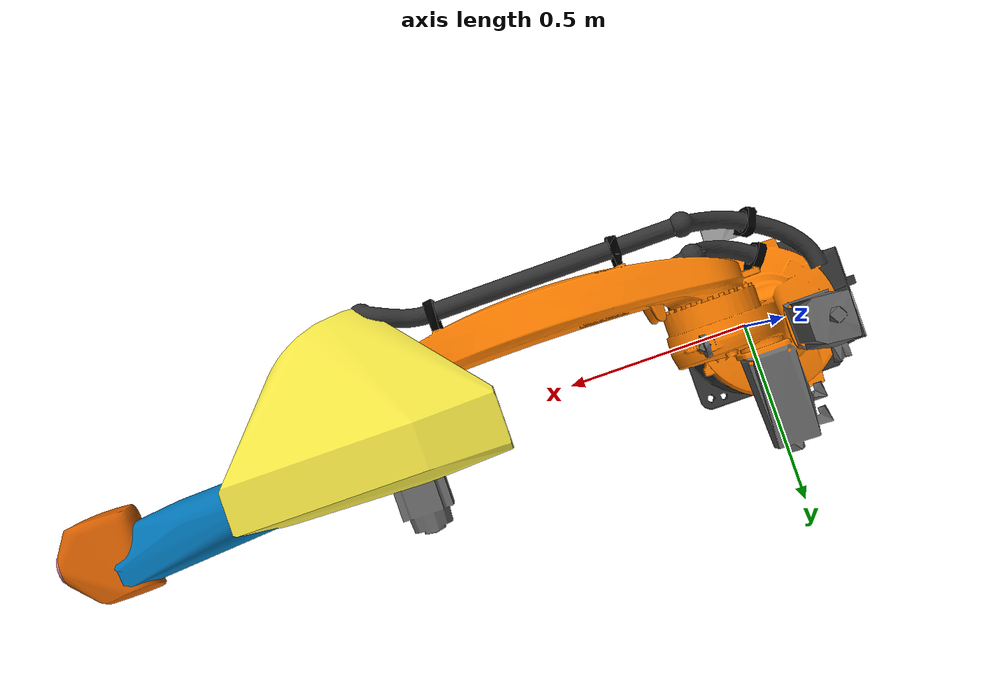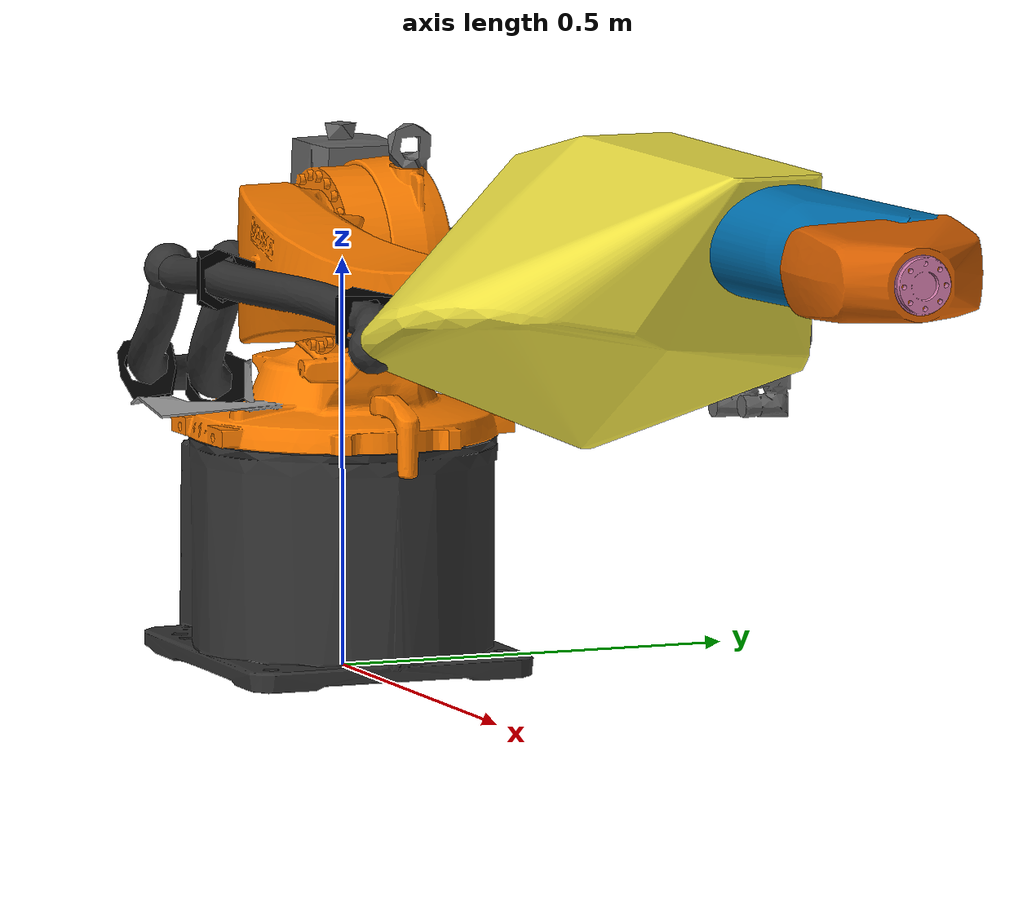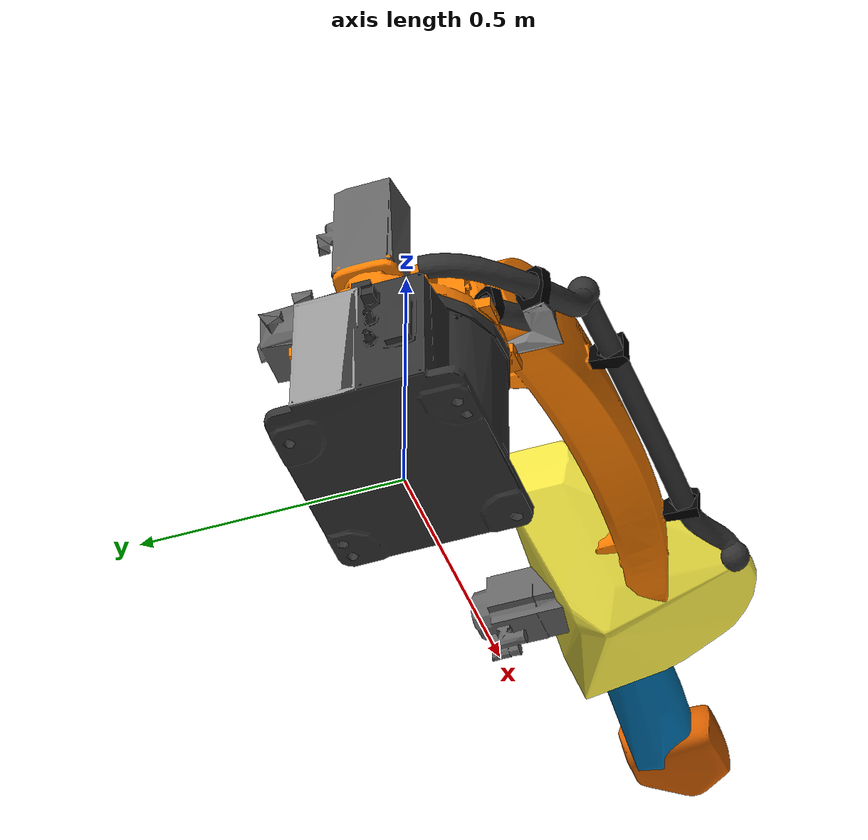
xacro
<?xml version="1.0"?>
<!--Generates a urdf from the macro in kr16_r1610_macro.xacro -->
<robot name="kuka_kr16r1610cybertech" xmlns:xacro="http://wiki.ros.org/xacro">
  <xacro:include filename="$(find kuka_kr16_support)/urdf/kr16r1610cybertech_macro.xacro" />
  <xacro:kuka_kr16r1610cybertech prefix=""/>
</robot>

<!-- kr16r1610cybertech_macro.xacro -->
<robot xmlns:xacro="http://wiki.ros.org/xacro">

  <xacro:macro name="kuka_kr16r1610cybertech" params="prefix">
    <link name="${prefix}base_link">
      <visual>
        <origin xyz="0 0 0" rpy="0 0 0"/>
        <geometry>
          <mesh filename="package://kuka_kr16_support/meshes/kr16r1610cybertech/visual/base_link.dae" />
        </geometry>
      </visual>
      <collision>
        <origin xyz="0 0 0" rpy="0 0 0"/>
        <geometry>
          <mesh filename="package://kuka_kr16_support/meshes/kr16r1610cybertech/collision/base_link.stl" />
        </geometry>
      </collision>
    </link>
    <link name="${prefix}link_1">
      <visual>
        <origin xyz="0 0 0" rpy="0 0 0"/>
        <geometry>
          <mesh filename="package://kuka_kr16_support/meshes/kr16r1610cybertech/visual/link_1.dae" />
        </geometry>
      </visual>
      <collision>
        <origin xyz="0 0 0" rpy="0 0 0"/>
        <geometry>
          <mesh filename="package://kuka_kr16_support/meshes/kr16r1610cybertech/collision/link_1.stl" />
        </geometry>
      </collision>
    </link>
    <link name="${prefix}link_2">
      <visual>
        <origin xyz="0 0 0" rpy="0 0 0"/>
        <geometry>
          <mesh filename="package://kuka_kr16_support/meshes/kr16r1610cybertech/visual/link_2.dae"/>
        </geometry>
      </visual>
      <collision>
        <origin xyz="0 0 0" rpy="0 0 0"/>
        <geometry>
          <mesh filename="package://kuka_kr16_support/meshes/kr16r1610cybertech/collision/link_2.stl" />
        </geometry>
      </collision>
    </link>
    <link name="${prefix}link_3">
      <visual>
        <origin xyz="0 0 0" rpy="0 0 0"/>
        <geometry>
          <mesh filename="package://kuka_kr16_support/meshes/kr16r1610cybertech/visual/link_3.dae" />
        </geometry>
      </visual>
      <collision>
        <origin xyz="0 0 0" rpy="0 0 0"/>
        <geometry>
          <mesh filename="package://kuka_kr16_support/meshes/kr16r1610cybertech/collision/link_3.stl" />
        </geometry>
      </collision>
    </link>
    <link name="${prefix}link_4">
      <visual>
        <origin xyz="0 0 0" rpy="0 0 0"/>
        <geometry>
          <mesh filename="package://kuka_kr16_support/meshes/kr16r1610cybertech/visual/link_4.dae" />
        </geometry>
      </visual>
      <collision>
        <origin xyz="0 0 0" rpy="0 0 0"/>
        <geometry>
          <mesh filename="package://kuka_kr16_support/meshes/kr16r1610cybertech/collision/link_4.stl" />
        </geometry>
      </collision>
    </link>
    <link name="${prefix}link_5">
      <visual>
        <origin xyz="0 0 0" rpy="0 0 0"/>
        <geometry>
          <mesh filename="package://kuka_kr16_support/meshes/kr16r1610cybertech/visual/link_5.dae" />
        </geometry>
      </visual>
      <collision>
        <origin xyz="0 0 0" rpy="0 0 0"/>
        <geometry>
          <mesh filename="package://kuka_kr16_support/meshes/kr16r1610cybertech/collision/link_5.stl" />
        </geometry>
      </collision>
    </link>
    <link name="${prefix}link_6">
      <visual>
        <origin xyz="0 0 0" rpy="0 0 0"/>
        <geometry>
          <mesh filename="package://kuka_kr16_support/meshes/kr16r1610cybertech/visual/link_6.dae" />
        </geometry>
      </visual>
      <collision>
        <origin xyz="0 0 0" rpy="0 0 0"/>
        <geometry>
          <mesh filename="package://kuka_kr16_support/meshes/kr16r1610cybertech/collision/link_6.stl" />
        </geometry>
      </collision>
    </link>

    <joint name="${prefix}joint_a1" type="revolute">
      <origin xyz="0 0 0.520" rpy="0 0 0"/>
      <parent link="${prefix}base_link"/>
      <child link="${prefix}link_1"/>
      <axis xyz="0 0 -1"/>
      <limit effort="0" lower="${radians(-185)}" upper="${radians(185)}" velocity="${radians(200)}"/>
    </joint>
    <joint name="${prefix}joint_a2" type="revolute">
      <origin xyz="0.160 0 0" rpy="0 0 0"/>
      <parent link="${prefix}link_1"/>
      <child link="${prefix}link_2"/>
      <axis xyz="0 1 0"/>
      <limit effort="0" lower="${radians(-185)}" upper="${radians(65)}" velocity="${radians(175)}"/>
    </joint>
    <joint name="${prefix}joint_a3" type="revolute">
      <origin xyz="0.78 0 0" rpy="0 0 0"/>
      <parent link="${prefix}link_2"/>
      <child link="${prefix}link_3"/>
      <axis xyz="0 1 0"/>
      <limit effort="0" lower="${radians(-138)}" upper="${radians(175)}" velocity="${radians(190)}"/>
    </joint>
    <joint name="${prefix}joint_a4" type="revolute">
      <origin xyz="0.655 0 0.15" rpy="0 0 0"/>
      <parent link="${prefix}link_3"/>
      <child link="${prefix}link_4"/>
      <axis xyz="-1 0 0"/>
      <limit effort="0" lower="${radians(-350)}" upper="${radians(350)}" velocity="${radians(430)}"/>
    </joint>
    <joint name="${prefix}joint_a5" type="revolute">
      <origin xyz="0 0 0" rpy="0 0 0"/>
      <parent link="${prefix}link_4"/>
      <child link="${prefix}link_5"/>
      <axis xyz="0 1 0"/>
      <limit effort="0" lower="${radians(-130)}" upper="${radians(130)}" velocity="${radians(430)}"/>
    </joint>
    <joint name="${prefix}joint_a6" type="revolute">
      <origin xyz="0.153 0 0" rpy="0 0 0"/>
      <parent link="${prefix}link_5"/>
      <child link="${prefix}link_6"/>
      <axis xyz="-1 0 0"/>
      <limit effort="0" lower="${radians(-350)}" upper="${radians(350)}" velocity="${radians(630)}"/>
    </joint>

    <!-- ROS-Industrial 'base' frame: base_link to KUKA $ROBROOT coordinate system transform -->
    <link name="${prefix}base" />
    <joint name="${prefix}base_link-base" type="fixed">
      <origin xyz="0 0 0" rpy="0 0 0"/>
      <parent link="${prefix}base_link"/>
      <child link="${prefix}base"/>
    </joint>

    <!-- ROS-Industrial 'flange' frame: attachment point for EEF models -->
    <link name="${prefix}flange" />
    <joint name="${prefix}joint_6-flange" type="fixed">
      <origin xyz="0 0 0" rpy="0 0 0" />
      <parent link="${prefix}link_6" />
      <child link="${prefix}flange" />
    </joint>

    <!-- ROS-Industrial 'tool0' frame: all-zeros tool frame -->
    <!-- This frame corresponds to the $FLANGE coordinate system in KUKA KRC controllers. -->
    <link name="${prefix}tool0"/>
    <joint name="${prefix}flange-tool0" type="fixed">
      <parent link="${prefix}flange"/>
      <child link="${prefix}tool0"/>
      <origin xyz="0 0 0" rpy="0 ${radians(90)} 0"/>
    </joint>

  </xacro:macro>
</robot>
